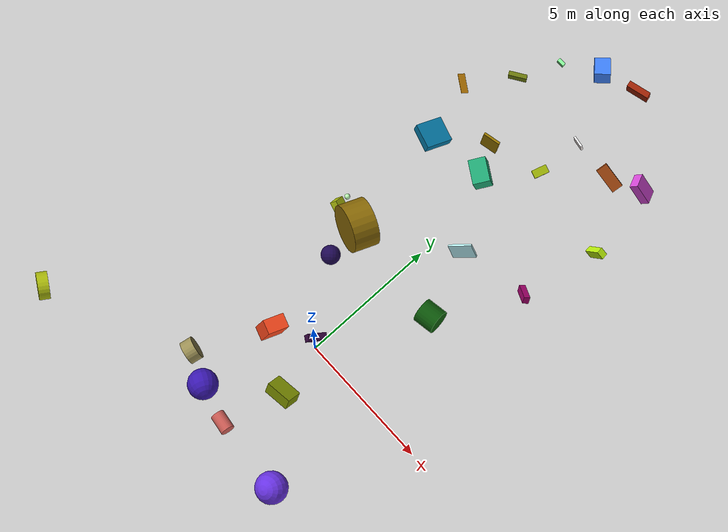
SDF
<sdf version="1.6">
 <world name="default">
  <model name="cylinder">
   <allow_auto_disable>0</allow_auto_disable>
   <link name="link">
    <collision name="collision">
     <geometry><cylinder><length>0.766622484243</length><radius>0.449890726839</radius></cylinder></geometry>
     <max_contacts>20</max_contacts>
    </collision>
    <visual name="visual">
     <geometry><cylinder><length>0.766622484243</length><radius>0.449890726839</radius></cylinder></geometry>
     <material>
      <diffuse>0.0431373 0.333333 0.0352941 1</diffuse>
      <ambient>0.0431373 0.333333 0.0352941 1</ambient>
     </material>
     <transparency>0.0</transparency>
    </visual>
    <inertial>
     <mass>0.929483546774</mass>
     <inertia>
      <ixz>0.0</ixz>
      <ixx>0.0925544884747</ixx>
      <ixy>0.0</ixy>
      <izz>0.0940645092378</izz>
      <iyy>0.0925544884747</iyy>
      <iyz>0.0</iyz>
     </inertia>
    </inertial>
   </link>
   <pose>1.8936 3.67699 0.499084 -1.19613 1.17825 -1.06852</pose>
   <static>0</static>
  </model>
  <model name="cuboid">
   <allow_auto_disable>0</allow_auto_disable>
   <link name="link">
    <collision name="collision">
     <geometry><box><size>0.224486 0.710822 0.263842</size></box></geometry>
     <max_contacts>20</max_contacts>
    </collision>
    <visual name="visual">
     <geometry><box><size>0.224486 0.710822 0.263842</size></box></geometry>
     <material>
      <diffuse>0.619608 0.00392157 0.407843 1</diffuse>
      <ambient>0.619608 0.00392157 0.407843 1</ambient>
     </material>
     <transparency>0.0</transparency>
    </visual>
    <inertial>
     <mass>0.444851398144</mass>
     <inertia>
      <ixz>0.0</ixz>
      <ixx>0.0213113741842</ixx>
      <ixy>0.0</ixy>
      <izz>0.0205989259066</izz>
      <iyy>0.00444875189564</iyy>
      <iyz>0.0</iyz>
     </inertia>
    </inertial>
   </link>
   <pose>3.5135 6.63911 0.360916 -0.77973 0.256044 0.818158</pose>
   <static>0</static>
  </model>
  <model name="cylinder_13">
   <allow_auto_disable>0</allow_auto_disable>
   <link name="link">
    <collision name="collision">
     <geometry><cylinder><length>0.39374508557</length><radius>0.490627764064</radius></cylinder></geometry>
     <max_contacts>20</max_contacts>
    </collision>
    <visual name="visual">
     <geometry><cylinder><length>0.39374508557</length><radius>0.490627764064</radius></cylinder></geometry>
     <material>
      <diffuse>0.67451 0.733333 0.0509804 1</diffuse>
      <ambient>0.67451 0.733333 0.0509804 1</ambient>
     </material>
     <transparency>0.0</transparency>
    </visual>
    <inertial>
     <mass>0.1</mass>
     <inertia>
      <ixz>0.0</ixz>
      <ixx>0.00730985000852</ixx>
      <ixy>0.0</ixy>
      <izz>0.0120357801435</izz>
      <iyy>0.00730985000852</iyy>
      <iyz>0.0</iyz>
     </inertia>
    </inertial>
   </link>
   <pose>-7.96527 -5.60709 0.512223 -0.998279 1.30872 3.14159</pose>
   <static>0</static>
  </model>
  <model name="cuboid_7">
   <allow_auto_disable>0</allow_auto_disable>
   <link name="link">
    <collision name="collision">
     <geometry><box><size>0.400728 0.94122 0.567925</size></box></geometry>
     <max_contacts>20</max_contacts>
    </collision>
    <visual name="visual">
     <geometry><box><size>0.400728 0.94122 0.567925</size></box></geometry>
     <material>
      <diffuse>0.243137 0.509804 0.988235 1</diffuse>
      <ambient>0.243137 0.509804 0.988235 1</ambient>
     </material>
     <transparency>0.0</transparency>
    </visual>
    <inertial>
     <mass>0.490386730253</mass>
     <inertia>
      <ixz>0.0</ixz>
      <ixx>0.0493833082997</ixx>
      <ixy>0.0</ixy>
      <izz>0.042764900744</izz>
      <iyy>0.0197430249394</iyy>
      <iyz>0.0</iyz>
     </inertia>
    </inertial>
   </link>
   <pose>-0.491112 14.1659 0.46509 1.70593 0.920007 -0.680663</pose>
   <static>0</static>
  </model>
  <model name="cuboid_6">
   <allow_auto_disable>0</allow_auto_disable>
   <link name="link">
    <collision name="collision">
     <geometry><box><size>0.0853425 0.555013 0.296801</size></box></geometry>
     <max_contacts>20</max_contacts>
    </collision>
    <visual name="visual">
     <geometry><box><size>0.0853425 0.555013 0.296801</size></box></geometry>
     <material>
      <diffuse>0.603922 0.682353 0.027451 1</diffuse>
      <ambient>0.603922 0.682353 0.027451 1</ambient>
     </material>
     <transparency>0.0</transparency>
    </visual>
    <inertial>
     <mass>0.1</mass>
     <inertia>
      <ixz>0.0</ixz>
      <ixx>0.00330108677687</ixx>
      <ixy>0.0</ixy>
      <izz>0.00262769332305</izz>
      <iyy>0.000794782400189</iyy>
      <iyz>0.0</iyz>
     </inertia>
    </inertial>
   </link>
   <pose>0.676381 10.1143 0.0701555 -1.98917 -1.48259 -1.46113</pose>
   <static>0</static>
  </model>
  <model name="cuboid_5">
   <allow_auto_disable>0</allow_auto_disable>
   <link name="link">
    <collision name="collision">
     <geometry><box><size>0.0849932 0.610695 0.887659</size></box></geometry>
     <max_contacts>20</max_contacts>
    </collision>
    <visual name="visual">
     <geometry><box><size>0.0849932 0.610695 0.887659</size></box></geometry>
     <material>
      <diffuse>0.741176 0.964706 0.996078 1</diffuse>
      <ambient>0.741176 0.964706 0.996078 1</ambient>
     </material>
     <transparency>0.0</transparency>
    </visual>
    <inertial>
     <mass>0.996875592713</mass>
     <inertia>
      <ixz>0.0</ixz>
      <ixx>0.0964384041288</ixx>
      <ixy>0.0</ixy>
      <izz>0.0315820693639</izz>
      <iyy>0.0660565462923</iyy>
      <iyz>0.0</iyz>
     </inertia>
    </inertial>
   </link>
   <pose>0.949656 6.07692 0.454677 -1.03328 -0.475507 -1.06922</pose>
   <static>0</static>
  </model>
  <model name="cuboid_4">
   <allow_auto_disable>0</allow_auto_disable>
   <link name="link">
    <collision name="collision">
     <geometry><box><size>0.675616 0.0993626 0.64475</size></box></geometry>
     <max_contacts>20</max_contacts>
    </collision>
    <visual name="visual">
     <geometry><box><size>0.675616 0.0993626 0.64475</size></box></geometry>
     <material>
      <diffuse>0.607843 0.478431 0.00392157 1</diffuse>
      <ambient>0.607843 0.478431 0.00392157 1</ambient>
     </material>
     <transparency>0.0</transparency>
    </visual>
    <inertial>
     <mass>0.479526156085</mass>
     <inertia>
      <ixz>0.0</ixz>
      <ixx>0.0170062065518</ixx>
      <ixy>0.0</ixy>
      <izz>0.0186347969592</izz>
      <iyy>0.0348519493195</iyy>
      <iyz>0.0</iyz>
     </inertia>
    </inertial>
   </link>
   <pose>-1.24257 9.44412 0.357131 1.78162 1.25722 -1.16613</pose>
   <static>0</static>
  </model>
  <model name="cuboid_3">
   <allow_auto_disable>0</allow_auto_disable>
   <link name="link">
    <collision name="collision">
     <geometry><box><size>0.157917 0.962805 0.420865</size></box></geometry>
     <max_contacts>20</max_contacts>
    </collision>
    <visual name="visual">
     <geometry><box><size>0.157917 0.962805 0.420865</size></box></geometry>
     <material>
      <diffuse>0.627451 0.270588 0.054902 1</diffuse>
      <ambient>0.627451 0.270588 0.054902 1</ambient>
     </material>
     <transparency>0.0</transparency>
    </visual>
    <inertial>
     <mass>0.98691757582</mass>
     <inertia>
      <ixz>0.0</ixz>
      <ixx>0.0908063218941</ixx>
      <ixy>0.0</ixy>
      <izz>0.0782897700258</izz>
      <iyy>0.0166184729209</iyy>
      <iyz>0.0</iyz>
     </inertia>
    </inertial>
   </link>
   <pose>2.49798 11.7271 0.272316 -0.759639 -1.1439 -0.905693</pose>
   <static>0</static>
  </model>
  <model name="cuboid_2">
   <allow_auto_disable>0</allow_auto_disable>
   <link name="link">
    <collision name="collision">
     <geometry><box><size>0.429281 0.00764993 0.702387</size></box></geometry>
     <max_contacts>20</max_contacts>
    </collision>
    <visual name="visual">
     <geometry><box><size>0.429281 0.00764993 0.702387</size></box></geometry>
     <material><diffuse>1 0.670588 0.0588235 1</diffuse><ambient>1 0.670588 0.0588235 1</ambient></material>
     <transparency>0.0</transparency>
    </visual>
    <inertial>
     <mass>0.827688616914</mass>
     <inertia>
      <ixz>0.0</ixz>
      <ixx>0.0340322278324</ixx>
      <ixy>0.0</ixy>
      <izz>0.0127146967471</izz>
      <iyy>0.0467388516539</iyy>
      <iyz>0.0</iyz>
     </inertia>
    </inertial>
   </link>
   <pose>-3.50117 10.2328 0.213883 1.7895 0.848483 1.19459</pose>
   <static>0</static>
  </model>
  <model name="cuboid_1">
   <allow_auto_disable>0</allow_auto_disable>
   <link name="link">
    <collision name="collision">
     <geometry><box><size>0.34338 0.991013 0.93014</size></box></geometry>
     <max_contacts>20</max_contacts>
    </collision>
    <visual name="visual">
     <geometry><box><size>0.34338 0.991013 0.93014</size></box></geometry>
     <material>
      <diffuse>0.0117647 0.443137 0.611765 1</diffuse>
      <ambient>0.0117647 0.443137 0.611765 1</ambient>
     </material>
     <transparency>0.0</transparency>
    </visual>
    <inertial>
     <mass>0.357090989011</mass>
     <inertia>
      <ixz>0.0</ixz>
      <ixx>0.054970213388</ixx>
      <ixy>0.0</ixy>
      <izz>0.0327338417275</izz>
      <iyy>0.0292537826169</iyy>
      <iyz>0.0</iyz>
     </inertia>
    </inertial>
   </link>
   <pose>-2.83297 8.15573 0.368659 -1.22268 1.23351 -1.53719</pose>
   <static>0</static>
  </model>
  <model name="cuboid_12">
   <allow_auto_disable>0</allow_auto_disable>
   <link name="link">
    <collision name="collision">
     <geometry><box><size>0.279621 0.459889 0.0732241</size></box></geometry>
     <max_contacts>20</max_contacts>
    </collision>
    <visual name="visual">
     <geometry><box><size>0.279621 0.459889 0.0732241</size></box></geometry>
     <material><diffuse>1 0.956863 0.94902 1</diffuse><ambient>1 0.956863 0.94902 1</ambient></material>
     <transparency>0.0</transparency>
    </visual>
    <inertial>
     <mass>0.149765407867</mass>
     <inertia>
      <ixz>0.0</ixz>
      <ixx>0.00270650226865</ixx>
      <ixy>0.0</ixy>
      <izz>0.00361540697216</izz>
      <iyy>0.00104273935829</iyy>
      <iyz>0.0</iyz>
     </inertia>
    </inertial>
   </link>
   <pose>0.845942 11.7826 0.203811 -1.70206 -1.2627 3.05913</pose>
   <static>0</static>
  </model>
  <model name="cuboid_9">
   <allow_auto_disable>0</allow_auto_disable>
   <link name="link">
    <collision name="collision">
     <geometry><box><size>0.221688 0.27441 0.128961</size></box></geometry>
     <max_contacts>20</max_contacts>
    </collision>
    <visual name="visual">
     <geometry><box><size>0.221688 0.27441 0.128961</size></box></geometry>
     <material><diffuse>0.54902 1 0.619608 1</diffuse><ambient>0.54902 1 0.619608 1</ambient></material>
     <transparency>0.0</transparency>
    </visual>
    <inertial>
     <mass>0.168815820421</mass>
     <inertia>
      <ixz>0.0</ixz>
      <ixx>0.00129329715663</ixx>
      <ixy>0.0</ixy>
      <izz>0.00175071275152</izz>
      <iyy>0.000925344855687</iyy>
      <iyz>0.0</iyz>
     </inertia>
    </inertial>
   </link>
   <pose>-1.7176 13.3653 0.114057 0.451547 1.54318 2.0474</pose>
   <static>0</static>
  </model>
  <model name="cuboid_8">
   <allow_auto_disable>0</allow_auto_disable>
   <link name="link">
    <collision name="collision">
     <geometry><box><size>0.834542 0.806568 0.219154</size></box></geometry>
     <max_contacts>20</max_contacts>
    </collision>
    <visual name="visual">
     <geometry><box><size>0.834542 0.806568 0.219154</size></box></geometry>
     <material>
      <diffuse>0.623529 0.137255 0.0196078 1</diffuse>
      <ambient>0.623529 0.137255 0.0196078 1</ambient>
     </material>
     <transparency>0.0</transparency>
    </visual>
    <inertial>
     <mass>0.584040503658</mass>
     <inertia>
      <ixz>0.0</ixz>
      <ixx>0.0339999690743</ixx>
      <ixy>0.0</ixy>
      <izz>0.0655591862365</izz>
      <iyy>0.0362343297612</iyy>
      <iyz>0.0</iyz>
     </inertia>
    </inertial>
   </link>
   <pose>0.926869 14.5887 0.43679 1.67524 -0.0600008 0.251111</pose>
   <static>0</static>
  </model>
  <model name="cuboid_13">
   <allow_auto_disable>0</allow_auto_disable>
   <link name="link">
    <collision name="collision">
     <geometry><box><size>0.763084 0.324896 0.240419</size></box></geometry>
     <max_contacts>20</max_contacts>
    </collision>
    <visual name="visual">
     <geometry><box><size>0.763084 0.324896 0.240419</size></box></geometry>
     <material>
      <diffuse>0.756863 0.972549 0.0392157 1</diffuse>
      <ambient>0.756863 0.972549 0.0392157 1</ambient>
     </material>
     <transparency>0.0</transparency>
    </visual>
    <inertial>
     <mass>0.1</mass>
     <inertia>
      <ixz>0.0</ixz>
      <ixx>0.00136132227427</ixx>
      <ixy>0.0</ixy>
      <izz>0.00573211754989</izz>
      <iyy>0.00533414835621</iyy>
      <iyz>0.0</iyz>
     </inertia>
    </inertial>
   </link>
   <pose>4.1379 9.51008 0.425693 -1.27633 1.05104 -2.77413</pose>
   <static>0</static>
  </model>
  <model name="cuboid_10">
   <allow_auto_disable>0</allow_auto_disable>
   <link name="link">
    <collision name="collision">
     <geometry><box><size>0.424026 0.160276 0.662068</size></box></geometry>
     <max_contacts>20</max_contacts>
    </collision>
    <visual name="visual">
     <geometry><box><size>0.424026 0.160276 0.662068</size></box></geometry>
     <material>
      <diffuse>0.423529 0.478431 0.054902 1</diffuse>
      <ambient>0.423529 0.478431 0.054902 1</ambient>
     </material>
     <transparency>0.0</transparency>
    </visual>
    <inertial>
     <mass>0.111571492526</mass>
     <inertia>
      <ixz>0.0</ixz>
      <ixx>0.00431431141385</ixx>
      <ixy>0.0</ixy>
      <izz>0.00191053733594</izz>
      <iyy>0.00574716833244</iyy>
      <iyz>0.0</iyz>
     </inertia>
    </inertial>
   </link>
   <pose>-2.37531 11.8421 0.230167 -2.89625 -1.51655 -2.81055</pose>
   <static>0</static>
  </model>
  <model name="cuboid_17">
   <allow_auto_disable>0</allow_auto_disable>
   <link name="link">
    <collision name="collision">
     <geometry><box><size>0.420052 0.285192 0.357435</size></box></geometry>
     <max_contacts>20</max_contacts>
    </collision>
    <visual name="visual">
     <geometry><box><size>0.420052 0.285192 0.357435</size></box></geometry>
     <material>
      <diffuse>0.67451 0.733333 0.0509804 1</diffuse>
      <ambient>0.67451 0.733333 0.0509804 1</ambient>
     </material>
     <transparency>0.0</transparency>
    </visual>
    <inertial>
     <mass>0.766624029504</mass>
     <inertia>
      <ixz>0.0</ixz>
      <ixx>0.0133580405855</ixx>
      <ixy>0.0</ixy>
      <izz>0.0164682494983</izz>
      <iyy>0.0194341649975</iyy>
      <iyz>0.0</iyz>
     </inertia>
    </inertial>
   </link>
   <pose>-3.22414 4.00043 0.295531 -1.08762 0.705811 1.65025</pose>
   <static>0</static>
  </model>
  <model name="cuboid_16">
   <allow_auto_disable>0</allow_auto_disable>
   <link name="link">
    <collision name="collision">
     <geometry><box><size>0.894012 0.523783 0.801798</size></box></geometry>
     <max_contacts>20</max_contacts>
    </collision>
    <visual name="visual">
     <geometry><box><size>0.894012 0.523783 0.801798</size></box></geometry>
     <material>
      <diffuse>0.972549 0.282353 0.109804 1</diffuse>
      <ambient>0.972549 0.282353 0.109804 1</ambient>
     </material>
     <transparency>0.0</transparency>
    </visual>
    <inertial>
     <mass>0.314415596166</mass>
     <inertia>
      <ixz>0.0</ixz>
      <ixx>0.024032586446</ixx>
      <ixy>0.0</ixy>
      <izz>0.0281298583521</izz>
      <iyy>0.0377858509205</iyy>
      <iyz>0.0</iyz>
     </inertia>
    </inertial>
   </link>
   <pose>-1.50796 -0.654166 0.560293 -3.13281 -1.2112 1.24314</pose>
   <static>0</static>
  </model>
  <model name="cuboid_15">
   <allow_auto_disable>0</allow_auto_disable>
   <link name="link">
    <collision name="collision">
     <geometry><box><size>0.974623 0.600879 0.436901</size></box></geometry>
     <max_contacts>20</max_contacts>
    </collision>
    <visual name="visual">
     <geometry><box><size>0.974623 0.600879 0.436901</size></box></geometry>
     <material><diffuse>0.454902 0.521569 0 1</diffuse><ambient>0.454902 0.521569 0 1</ambient></material>
     <transparency>0.0</transparency>
    </visual>
    <inertial>
     <mass>0.597311035233</mass>
     <inertia>
      <ixz>0.0</ixz>
      <ixx>0.0274732514862</ixx>
      <ixy>0.0</ixy>
      <izz>0.0652535695816</izz>
      <iyy>0.0567830476661</iyy>
      <iyz>0.0</iyz>
     </inertia>
    </inertial>
   </link>
   <pose>0.416069 -1.90679 0.445227 0.644552 0.200868 -3.025</pose>
   <static>0</static>
  </model>
  <model name="cuboid_14">
   <allow_auto_disable>0</allow_auto_disable>
   <link name="link">
    <collision name="collision">
     <geometry><box><size>0.91249 0.558978 0.320474</size></box></geometry>
     <max_contacts>20</max_contacts>
    </collision>
    <visual name="visual">
     <geometry><box><size>0.91249 0.558978 0.320474</size></box></geometry>
     <material>
      <diffuse>0.839216 0.282353 0.843137 1</diffuse>
      <ambient>0.839216 0.282353 0.843137 1</ambient>
     </material>
     <transparency>0.0</transparency>
    </visual>
    <inertial>
     <mass>0.195644296032</mass>
     <inertia>
      <ixz>0.0</ixz>
      <ixx>0.00676864437924</ixx>
      <ixy>0.0</ixy>
      <izz>0.0186692675102</izz>
      <iyy>0.0152495249691</iyy>
      <iyz>0.0</iyz>
     </inertia>
    </inertial>
   </link>
   <pose>3.56898 12.2313 0.512788 0.537147 -0.72594 -3.11069</pose>
   <static>0</static>
  </model>
  <model name="cylinder_1">
   <allow_auto_disable>0</allow_auto_disable>
   <link name="link">
    <collision name="collision">
     <geometry><cylinder><length>0.43774912268</length><radius>0.418349856169</radius></cylinder></geometry>
     <max_contacts>20</max_contacts>
    </collision>
    <visual name="visual">
     <geometry><cylinder><length>0.43774912268</length><radius>0.418349856169</radius></cylinder></geometry>
     <material>
      <diffuse>0.607843 0.560784 0.333333 1</diffuse>
      <ambient>0.607843 0.560784 0.333333 1</ambient>
     </material>
     <transparency>0.0</transparency>
    </visual>
    <inertial>
     <mass>0.987273046335</mass>
     <inertia>
      <ixz>0.0</ixz>
      <ixx>0.0589627519001</ixx>
      <ixy>0.0</ixy>
      <izz>0.0863945869851</izz>
      <iyy>0.0589627519001</iyy>
      <iyz>0.0</iyz>
     </inertia>
    </inertial>
   </link>
   <pose>-2.79437 -3.26781 0.450257 1.75384 0.154381 -0.179047</pose>
   <static>0</static>
  </model>
  <model name="cylinder_3">
   <allow_auto_disable>0</allow_auto_disable>
   <link name="link">
    <collision name="collision">
     <geometry><cylinder><length>0.68575916883</length><radius>0.252737174296</radius></cylinder></geometry>
     <max_contacts>20</max_contacts>
    </collision>
    <visual name="visual">
     <geometry><cylinder><length>0.68575916883</length><radius>0.252737174296</radius></cylinder></geometry>
     <material>
      <diffuse>0.784314 0.352941 0.32549 1</diffuse>
      <ambient>0.784314 0.352941 0.32549 1</ambient>
     </material>
     <transparency>0.0</transparency>
    </visual>
    <inertial>
     <mass>0.1</mass>
     <inertia>
      <ixz>0.0</ixz>
      <ixx>0.0055157822954</ixx>
      <ixy>0.0</ixy>
      <izz>0.00319380396356</izz>
      <iyy>0.0055157822954</iyy>
      <iyz>0.0</iyz>
     </inertia>
    </inertial>
   </link>
   <pose>-0.209785 -4.13238 0.30251 2.10938 1.26586 -1.19511</pose>
   <static>0</static>
  </model>
  <model name="cuboid_18">
   <allow_auto_disable>0</allow_auto_disable>
   <link name="link">
    <collision name="collision">
     <geometry><box><size>0.251048 0.72358 0.295746</size></box></geometry>
     <max_contacts>20</max_contacts>
    </collision>
    <visual name="visual">
     <geometry><box><size>0.251048 0.72358 0.295746</size></box></geometry>
     <material>
      <diffuse>0.207843 0.0235294 0.243137 1</diffuse>
      <ambient>0.207843 0.0235294 0.243137 1</ambient>
     </material>
     <transparency>0.0</transparency>
    </visual>
    <inertial>
     <mass>0.744631213162</mass>
     <inertia>
      <ixz>0.0</ixz>
      <ixx>0.0379162629148</ixx>
      <ixy>0.0</ixy>
      <izz>0.0363996727312</izz>
      <iyy>0.00933835973065</iyy>
      <iyz>0.0</iyz>
     </inertia>
    </inertial>
   </link>
   <pose>-0.244966 0.244739 0.298301 -0.478031 -0.00456245 -0.572521</pose>
   <static>0</static>
  </model>
  <model name="ball">
   <allow_auto_disable>0</allow_auto_disable>
   <link name="link">
    <collision name="collision">
     <geometry><sphere><radius>0.1</radius></sphere></geometry>
     <max_contacts>20</max_contacts>
    </collision>
    <visual name="visual">
     <geometry><sphere><radius>0.1</radius></sphere></geometry>
     <material>
      <diffuse>0.745098 0.992157 0.717647 1</diffuse>
      <ambient>0.745098 0.992157 0.717647 1</ambient>
     </material>
     <transparency>0.0</transparency>
    </visual>
    <inertial>
     <mass>0.256080919316</mass>
     <inertia>
      <ixz>0.0</ixz>
      <ixx>0.00102432367726</ixx>
      <ixy>0.0</ixy>
      <izz>0.00102432367726</izz>
      <iyy>0.00102432367726</iyy>
      <iyz>0.0</iyz>
     </inertia>
    </inertial>
   </link>
   <pose>-3.24266 4.44276 0.099808 -3.10995 -0.644683 -2.00918</pose>
   <static>0</static>
  </model>
  <model name="cuboid_11">
   <allow_auto_disable>0</allow_auto_disable>
   <link name="link">
    <collision name="collision">
     <geometry><box><size>0.625752 0.769434 0.897688</size></box></geometry>
     <max_contacts>20</max_contacts>
    </collision>
    <visual name="visual">
     <geometry><box><size>0.625752 0.769434 0.897688</size></box></geometry>
     <material>
      <diffuse>0.121569 0.654902 0.454902 1</diffuse>
      <ambient>0.121569 0.654902 0.454902 1</ambient>
     </material>
     <transparency>0.0</transparency>
    </visual>
    <inertial>
     <mass>0.628123567676</mass>
     <inertia>
      <ixz>0.0</ixz>
      <ixx>0.0731697037154</ixx>
      <ixy>0.0</ixy>
      <izz>0.051484918182</izz>
      <iyy>0.0626767614122</iyy>
      <iyz>0.0</iyz>
     </inertia>
    </inertial>
   </link>
   <pose>-0.662908 8.43204 0.473371 1.494 -0.20687 1.03683</pose>
   <static>0</static>
  </model>
  <model name="cylinder_2">
   <allow_auto_disable>0</allow_auto_disable>
   <link name="link">
    <collision name="collision">
     <geometry><cylinder><length>0.933098098628</length><radius>0.873085626835</radius></cylinder></geometry>
     <max_contacts>20</max_contacts>
    </collision>
    <visual name="visual">
     <geometry><cylinder><length>0.933098098628</length><radius>0.873085626835</radius></cylinder></geometry>
     <material>
      <diffuse>0.533333 0.407843 0.0235294 1</diffuse>
      <ambient>0.533333 0.407843 0.0235294 1</ambient>
     </material>
     <transparency>0.0</transparency>
    </visual>
    <inertial>
     <mass>0.132427957443</mass>
     <inertia>
      <ixz>0.0</ixz>
      <ixx>0.0348451901404</ixx>
      <ixy>0.0</ixy>
      <izz>0.0504734931594</izz>
      <iyy>0.0348451901404</iyy>
      <iyz>0.0</iyz>
     </inertia>
    </inertial>
   </link>
   <pose>-2.1401 3.90492 0.949769 1.33068 -0.528661 -0.230326</pose>
   <static>0</static>
  </model>
  <model name="ball_2">
   <allow_auto_disable>0</allow_auto_disable>
   <link name="link">
    <collision name="collision">
     <geometry><sphere><radius>0.553455827824</radius></sphere></geometry>
     <max_contacts>20</max_contacts>
    </collision>
    <visual name="visual">
     <geometry><sphere><radius>0.553455827824</radius></sphere></geometry>
     <material>
      <diffuse>0.227451 0.0941176 0.694118 1</diffuse>
      <ambient>0.227451 0.0941176 0.694118 1</ambient>
     </material>
     <transparency>0.0</transparency>
    </visual>
    <inertial>
     <mass>0.543236621588</mass>
     <inertia>
      <ixz>0.0</ixz>
      <ixx>0.0665602524889</ixx>
      <ixy>0.0</ixy>
      <izz>0.0665602524889</izz>
      <iyy>0.0665602524889</iyy>
      <iyz>0.0</iyz>
     </inertia>
    </inertial>
   </link>
   <pose>-1.63461 -3.76292 0.551885 1.04615 -0.713078 1.50617</pose>
   <static>0</static>
  </model>
  <model name="ball_3">
   <allow_auto_disable>0</allow_auto_disable>
   <link name="link">
    <collision name="collision">
     <geometry><sphere><radius>0.590514627331</radius></sphere></geometry>
     <max_contacts>20</max_contacts>
    </collision>
    <visual name="visual">
     <geometry><sphere><radius>0.590514627331</radius></sphere></geometry>
     <material>
      <diffuse>0.407843 0.196078 0.890196 1</diffuse>
      <ambient>0.407843 0.196078 0.890196 1</ambient>
     </material>
     <transparency>0.0</transparency>
    </visual>
    <inertial>
     <mass>0.768677487272</mass>
     <inertia>
      <ixz>0.0</ixz>
      <ixx>0.107217449672</ixx>
      <ixy>0.0</ixy>
      <izz>0.107217449672</izz>
      <iyy>0.107217449672</iyy>
      <iyz>0.0</iyz>
     </inertia>
    </inertial>
   </link>
   <pose>2.62016 -4.38562 0.590182 0.500787 -0.262703 0.130972</pose>
   <static>0</static>
  </model>
  <model name="ball_1">
   <allow_auto_disable>0</allow_auto_disable>
   <link name="link">
    <collision name="collision">
     <geometry><sphere><radius>0.351242982616</radius></sphere></geometry>
     <max_contacts>20</max_contacts>
    </collision>
    <visual name="visual">
     <geometry><sphere><radius>0.351242982616</radius></sphere></geometry>
     <material>
      <diffuse>0.121569 0.0352941 0.329412 1</diffuse>
      <ambient>0.121569 0.0352941 0.329412 1</ambient>
     </material>
     <transparency>0.0</transparency>
    </visual>
    <inertial>
     <mass>0.54668693706</mass>
     <inertia>
      <ixz>0.0</ixz>
      <ixx>0.0269782640302</ixx>
      <ixy>0.0</ixy>
      <izz>0.0269782640302</izz>
      <iyy>0.0269782640302</iyy>
      <iyz>0.0</iyz>
     </inertia>
    </inertial>
   </link>
   <pose>-2.0564 2.5758 0.350496 -0.616476 1.44895 1.75381</pose>
   <static>0</static>
  </model>
  <include><static>1</static><uri>model://ground_plane</uri><name>ground_plane</name></include>
 </world>
</sdf>
